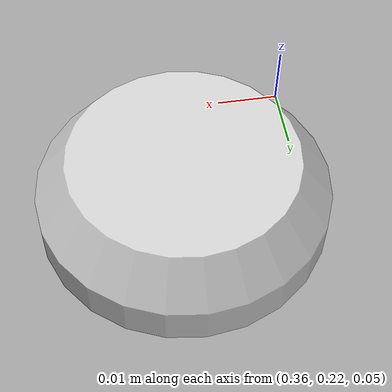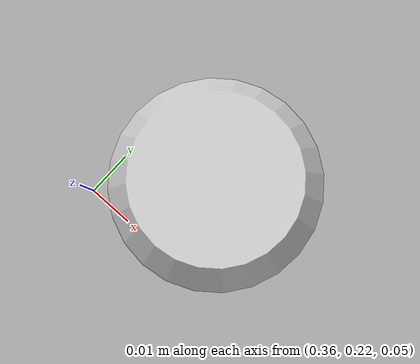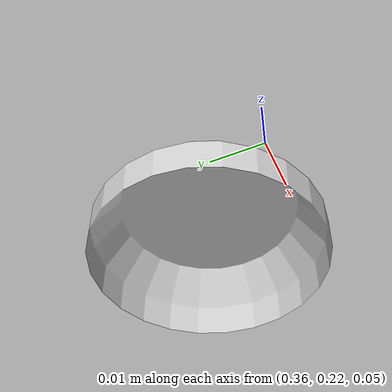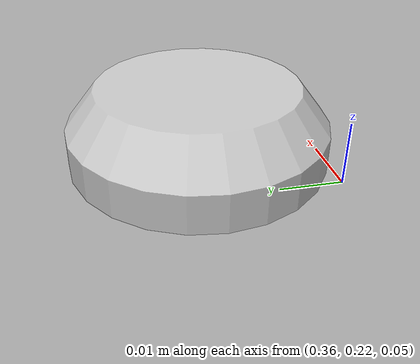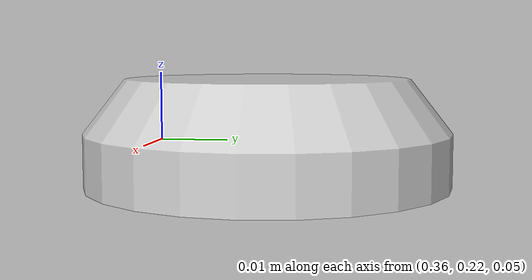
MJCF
<mujoco model="original-30">
  <default>
    <default class="visual">
      <geom group="2" type="mesh" contype="0" conaffinity="0"/>
    </default>
    <default class="collision">
      <geom group="3" type="mesh"/>
    </default>
  </default>
  <asset>
    <material name="material_0_0" specular="0.06666666666666667" shininess="0.03" rgba="0.8 0.8 0.8 1"/>
    <mesh file="original-30.obj"/>
  </asset>
  <worldbody>
    <body name="original-30">
      <geom material="material_0_0" mesh="original-30" class="visual"/>
      <geom mesh="original-30" class="collision"/>
    </body>
  </worldbody>
</mujoco>
